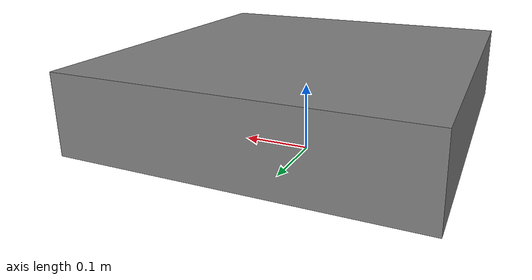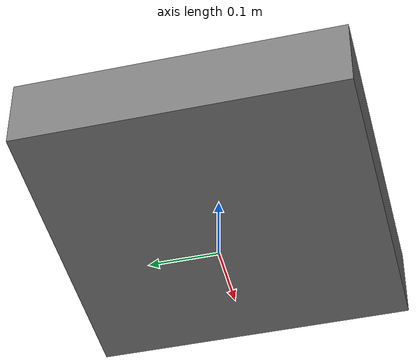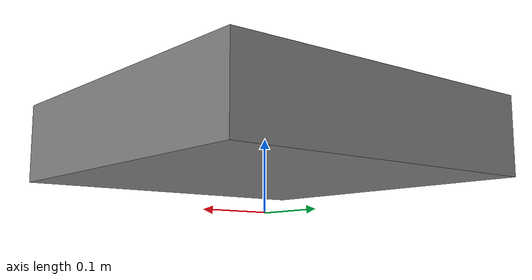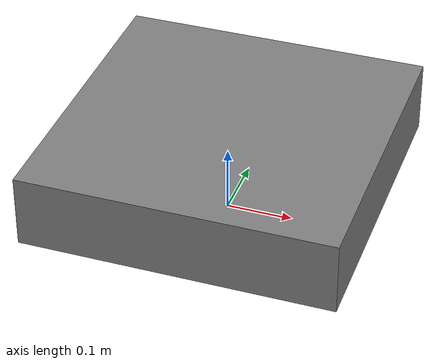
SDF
<!--Defines the physical properties of the drone in Gazebo -->
<!--Specifies mass (1.5kg), dimensions (47x47x11cm), and inertial properties -->
<!--Contains collision and visual elements for simulation -->
<!--Uses a simple box geometry for initial testing -->

<?xml version="1.0" ?>
<!-- SDF model file for the drone, version 1.6 specification -->
<sdf version="1.6">
  <!-- Main drone model definition -->
  <model name="drone">
    <!-- Base link represents the main body of the drone -->
    <link name="base_link">
      <!-- Initial pose: x y z roll pitch yaw -->
      <pose>0 0 0.1 0 0 0</pose>
      <!-- Inertial properties for physics simulation -->
      <inertial>
        <!-- Mass in kilograms -->
        <mass>1.5</mass>
        <!-- Inertia matrix for rigid body dynamics -->
        <inertia>
          <!-- Moment of inertia around x-axis -->
          <ixx>0.029125</ixx>
          <!-- Product of inertia xy -->
          <ixy>0</ixy>
          <!-- Product of inertia xz -->
          <ixz>0</ixz>
          <!-- Moment of inertia around y-axis -->
          <iyy>0.029125</iyy>
          <!-- Product of inertia yz -->
          <iyz>0</iyz>
          <!-- Moment of inertia around z-axis -->
          <izz>0.055225</izz>
        </inertia>
      </inertial>
      <!-- Collision geometry for physics calculations -->
      <collision name="collision">
        <geometry>
          <!-- Simple box shape for collision detection -->
          <box>
            <!-- Size in meters: length width height -->
            <size>0.47 0.47 0.11</size>
          </box>
        </geometry>
      </collision>
      <!-- Visual representation of the drone -->
      <visual name="visual">
        <geometry>
          <!-- Visual geometry matching collision box -->
          <box>
            <size>0.47 0.47 0.11</size>
          </box>
        </geometry>
        <!-- Material properties for visualization -->
        <material>
          <!-- Ambient color (RGBA) -->
          <ambient>0.5 0.5 0.5 1</ambient>
          <!-- Diffuse color (RGBA) -->
          <diffuse>0.5 0.5 0.5 1</diffuse>
        </material>
      </visual>
    </link>
  </model>
</sdf>
